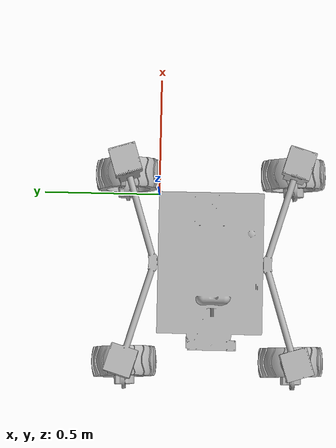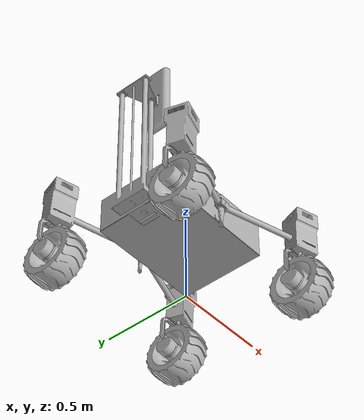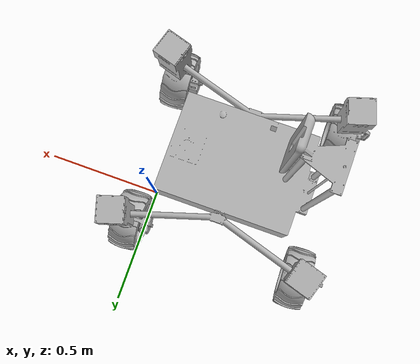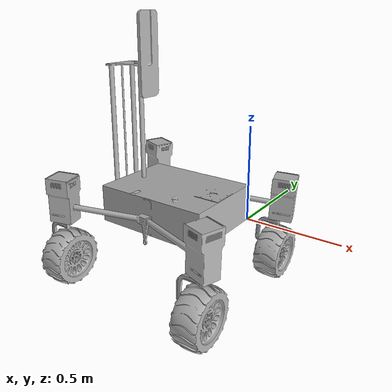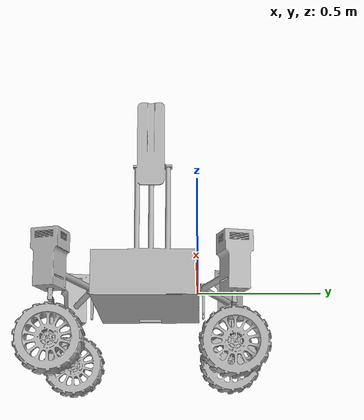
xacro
<?xml version="1.0" ?>
<robot name="onyx" xmlns:xacro="http://www.ros.org/wiki/xacro">

<xacro:include filename="$(find new_description)/urdf/materials.xacro" />

<link name="base_link">
  <inertial>
    <origin xyz="-0.3584749692611154 -0.22247254185875498 0.1674507190539034" rpy="0 0 0"/>
    <mass value="45.44445566983739"/>
    <inertia ixx="3.256638" iyy="4.634323" izz="3.278048" ixy="0.000512" iyz="0.000365" ixz="0.549494"/>
  </inertial>
  <visual>
    <origin xyz="0 0 0" rpy="0 0 0"/>
    <geometry>
      <mesh filename="file://$(find new_description)/meshes/base_link.stl" scale="0.001 0.001 0.001"/>
    </geometry>
    <material name="silver"/>
  </visual>
  <collision>
    <origin xyz="0 0 0" rpy="0 0 0"/>
    <geometry>
      <mesh filename="file://$(find new_description)/meshes/base_link.stl" scale="0.001 0.001 0.001"/>
    </geometry>
  </collision>
</link>

<link name="1._pivot_steering_v2_1">
  <inertial>
    <origin xyz="0.0013327059020719068 -0.14344220376800904 0.041707356384150185" rpy="0 0 0"/>
    <mass value="9.811514021273375"/>
    <inertia ixx="0.064211" iyy="1.826132" izz="1.795757" ixy="2.9e-05" iyz="0.001127" ixz="0.044969"/>
  </inertial>
  <visual>
    <origin xyz="0.3 0.448 -0.09" rpy="0 0 0"/>
    <geometry>
      <mesh filename="file://$(find new_description)/meshes/1._pivot_steering_v2_1.stl" scale="0.001 0.001 0.001"/>
    </geometry>
    <material name="silver"/>
  </visual>
  <collision>
    <origin xyz="0.3 0.448 -0.09" rpy="0 0 0"/>
    <geometry>
      <mesh filename="file://$(find new_description)/meshes/1._pivot_steering_v2_1.stl" scale="0.001 0.001 0.001"/>
    </geometry>
  </collision>
</link>

<link name="1._pivot_steering_v2_2">
  <inertial>
    <origin xyz="0.0023074010701228387 0.14344220376800906 0.041664800274108515" rpy="0 0 0"/>
    <mass value="9.811514021273375"/>
    <inertia ixx="0.069555" iyy="1.826132" izz="1.790413" ixy="-6.9e-05" iyz="-0.001125" ixz="0.106054"/>
  </inertial>
  <visual>
    <origin xyz="0.3 -0.003 -0.091" rpy="0 0 0"/>
    <geometry>
      <mesh filename="file://$(find new_description)/meshes/1._pivot_steering_v2_2.stl" scale="0.001 0.001 0.001"/>
    </geometry>
    <material name="silver"/>
  </visual>
  <collision>
    <origin xyz="0.3 -0.003 -0.091" rpy="0 0 0"/>
    <geometry>
      <mesh filename="file://$(find new_description)/meshes/1._pivot_steering_v2_2.stl" scale="0.001 0.001 0.001"/>
    </geometry>
  </collision>
</link>

<link name="1._driving_v2_1">
  <inertial>
    <origin xyz="-0.05336323228963791 -0.001790241868721898 -0.23611207721402075" rpy="0 0 0"/>
    <mass value="2.150656122682915"/>
    <inertia ixx="0.013956" iyy="0.016641" izz="0.003749" ixy="-0.0001" iyz="-6.9e-05" ixz="-0.002335"/>
  </inertial>
  <visual>
    <origin xyz="-0.116011 0.591408 -0.062747" rpy="0 0 0"/>
    <geometry>
      <mesh filename="file://$(find new_description)/meshes/1._driving_v2_1.stl" scale="0.001 0.001 0.001"/>
    </geometry>
    <material name="silver"/>
  </visual>
  <collision>
    <origin xyz="-0.116011 0.591408 -0.062747" rpy="0 0 0"/>
    <geometry>
      <mesh filename="file://$(find new_description)/meshes/1._driving_v2_1.stl" scale="0.001 0.001 0.001"/>
    </geometry>
  </collision>
</link>

<link name="1._driving_v2_3">
  <inertial>
    <origin xyz="-0.05336302206809562 -0.001790241868722342 -0.23611208152895571" rpy="0 0 0"/>
    <mass value="2.150656122682915"/>
    <inertia ixx="0.013956" iyy="0.016641" izz="0.003749" ixy="-0.0001" iyz="-6.9e-05" ixz="-0.002335"/>
  </inertial>
  <visual>
    <origin xyz="0.716864 0.591408 -0.084264" rpy="0 0 0"/>
    <geometry>
      <mesh filename="file://$(find new_description)/meshes/1._driving_v2_3.stl" scale="0.001 0.001 0.001"/>
    </geometry>
    <material name="silver"/>
  </visual>
  <collision>
    <origin xyz="0.716864 0.591408 -0.084264" rpy="0 0 0"/>
    <geometry>
      <mesh filename="file://$(find new_description)/meshes/1._driving_v2_3.stl" scale="0.001 0.001 0.001"/>
    </geometry>
  </collision>
</link>

<link name="1._driving_v2_2">
  <inertial>
    <origin xyz="-0.06173523819166341 -0.0017906129843301144 -0.23406282227931077" rpy="0 0 0"/>
    <mass value="2.150656122682915"/>
    <inertia ixx="0.013777" iyy="0.016641" izz="0.003928" ixy="-0.000102" iyz="-6.5e-05" ixz="-0.002692"/>
  </inertial>
  <visual>
    <origin xyz="-0.114777 -0.146408 -0.048954" rpy="0 0 0"/>
    <geometry>
      <mesh filename="file://$(find new_description)/meshes/1._driving_v2_2.stl" scale="0.001 0.001 0.001"/>
    </geometry>
    <material name="silver"/>
  </visual>
  <collision>
    <origin xyz="-0.114777 -0.146408 -0.048954" rpy="0 0 0"/>
    <geometry>
      <mesh filename="file://$(find new_description)/meshes/1._driving_v2_2.stl" scale="0.001 0.001 0.001"/>
    </geometry>
  </collision>
</link>

<link name="1._driving_v2_4">
  <inertial>
    <origin xyz="-0.061736017683869826 -0.0017906129843305862 -0.2340621183806948" rpy="0 0 0"/>
    <mass value="2.150656122682915"/>
    <inertia ixx="0.013777" iyy="0.016641" izz="0.003928" ixy="-0.000102" iyz="-6.5e-05" ixz="-0.002692"/>
  </inertial>
  <visual>
    <origin xyz="0.716803 -0.146408 -0.100108" rpy="0 0 0"/>
    <geometry>
      <mesh filename="file://$(find new_description)/meshes/1._driving_v2_4.stl" scale="0.001 0.001 0.001"/>
    </geometry>
    <material name="silver"/>
  </visual>
  <collision>
    <origin xyz="0.716803 -0.146408 -0.100108" rpy="0 0 0"/>
    <geometry>
      <mesh filename="file://$(find new_description)/meshes/1._driving_v2_4.stl" scale="0.001 0.001 0.001"/>
    </geometry>
  </collision>
</link>

<link name="1._wheel_simplified_v2_1">
  <inertial>
    <origin xyz="-0.03947205553790728 -0.0013188678711944513 0.0024275550921873112" rpy="0 0 0"/>
    <mass value="23.722548877018745"/>
    <inertia ixx="0.348962" iyy="0.207419" izz="0.207797" ixy="0.004735" iyz="-0.000291" ixz="-0.008717"/>
  </inertial>
  <visual>
    <origin xyz="-0.139795 -0.147791 0.219889" rpy="0 0 0"/>
    <geometry>
      <mesh filename="file://$(find new_description)/meshes/1._wheel_simplified_v2_1.stl" scale="0.001 0.001 0.001"/>
    </geometry>
    <material name="silver"/>
  </visual>
  <collision>
    <origin xyz="-0.139795 -0.147791 0.219889" rpy="0 0 0"/>
    <geometry>
      <mesh filename="file://$(find new_description)/meshes/1._wheel_simplified_v2_1.stl" scale="0.001 0.001 0.001"/>
    </geometry>
  </collision>
</link>

<link name="1._wheel_simplified_v2_3">
  <inertial>
    <origin xyz="-0.03947183503011431 -0.0013188678711952284 0.0024282589908032892" rpy="0 0 0"/>
    <mass value="23.722548877018745"/>
    <inertia ixx="0.348962" iyy="0.207419" izz="0.207797" ixy="0.004735" iyz="-0.000291" ixz="-0.008717"/>
  </inertial>
  <visual>
    <origin xyz="0.691786 -0.147791 0.168735" rpy="0 0 0"/>
    <geometry>
      <mesh filename="file://$(find new_description)/meshes/1._wheel_simplified_v2_3.stl" scale="0.001 0.001 0.001"/>
    </geometry>
    <material name="silver"/>
  </visual>
  <collision>
    <origin xyz="0.691786 -0.147791 0.168735" rpy="0 0 0"/>
    <geometry>
      <mesh filename="file://$(find new_description)/meshes/1._wheel_simplified_v2_3.stl" scale="0.001 0.001 0.001"/>
    </geometry>
  </collision>
</link>

<link name="1._wheel_simplified_v2_4">
  <inertial>
    <origin xyz="-0.039533229871911726 -0.0013184967555868177 0.0010210764613666212" rpy="0 0 0"/>
    <mass value="23.722548877018745"/>
    <inertia ixx="0.349404" iyy="0.207419" izz="0.207356" ixy="0.004742" iyz="-0.000122" ixz="-0.003672"/>
  </inertial>
  <visual>
    <origin xyz="-0.150584 0.590025 0.205035" rpy="0 0 0"/>
    <geometry>
      <mesh filename="file://$(find new_description)/meshes/1._wheel_simplified_v2_4.stl" scale="0.001 0.001 0.001"/>
    </geometry>
    <material name="silver"/>
  </visual>
  <collision>
    <origin xyz="-0.150584 0.590025 0.205035" rpy="0 0 0"/>
    <geometry>
      <mesh filename="file://$(find new_description)/meshes/1._wheel_simplified_v2_4.stl" scale="0.001 0.001 0.001"/>
    </geometry>
  </collision>
</link>

<link name="1._wheel_simplified_v2_2">
  <inertial>
    <origin xyz="-0.03953301965036915 -0.0013184967555871507 0.0010210721464319061" rpy="0 0 0"/>
    <mass value="23.722548877018745"/>
    <inertia ixx="0.349404" iyy="0.207419" izz="0.207356" ixy="0.004742" iyz="-0.000122" ixz="-0.003672"/>
  </inertial>
  <visual>
    <origin xyz="0.682291 0.590025 0.183518" rpy="0 0 0"/>
    <geometry>
      <mesh filename="file://$(find new_description)/meshes/1._wheel_simplified_v2_2.stl" scale="0.001 0.001 0.001"/>
    </geometry>
    <material name="silver"/>
  </visual>
  <collision>
    <origin xyz="0.682291 0.590025 0.183518" rpy="0 0 0"/>
    <geometry>
      <mesh filename="file://$(find new_description)/meshes/1._wheel_simplified_v2_2.stl" scale="0.001 0.001 0.001"/>
    </geometry>
  </collision>
</link>

<joint name="body_joint1" type="fixed">
  <origin xyz="-0.3 -0.448 0.09" rpy="0 0 0"/>
  <parent link="base_link"/>
  <child link="1._pivot_steering_v2_1"/>
  <axis xyz="0.0 1.0 -0.0"/>
</joint>

<joint name="body_joint2" type="fixed">
  <origin xyz="-0.3 0.003 0.091" rpy="0 0 0"/>
  <parent link="base_link"/>
  <child link="1._pivot_steering_v2_2"/>
  <axis xyz="0.0 -1.0 0.0"/>
</joint>

<joint name="body_joint3" type="fixed">
  <origin xyz="0.416011 -0.143408 -0.027253" rpy="0 0 0"/>
  <parent link="1._pivot_steering_v2_1"/>
  <child link="1._driving_v2_1"/>
  <axis xyz="0.025826 0.0 0.999666"/>
</joint>

<joint name="body_joint4" type="fixed">
  <origin xyz="-0.416864 -0.143408 -0.005736" rpy="0 0 0"/>
  <parent link="1._pivot_steering_v2_1"/>
  <child link="1._driving_v2_3"/>
  <axis xyz="-0.025826 -0.0 -0.999666"/>
</joint>

<joint name="body_joint5" type="fixed">
  <origin xyz="0.414777 0.143408 -0.042046" rpy="0 0 0"/>
  <parent link="1._pivot_steering_v2_2"/>
  <child link="1._driving_v2_2"/>
  <axis xyz="-0.061399 0.0 -0.998113"/>
</joint>

<joint name="body_joint6" type="fixed">
  <origin xyz="-0.416803 0.143408 0.009108" rpy="0 0 0"/>
  <parent link="1._pivot_steering_v2_2"/>
  <child link="1._driving_v2_4"/>
  <axis xyz="0.061399 -0.0 0.998113"/>
</joint>

<joint name="body_joint7" type="fixed">
  <origin xyz="0.025018 0.001383 -0.268843" rpy="0 0 0"/>
  <parent link="1._driving_v2_2"/>
  <child link="1._wheel_simplified_v2_1"/>
  <axis xyz="0.997559 0.03333 -0.061365"/>
</joint>

<joint name="body_joint8" type="fixed">
  <origin xyz="0.025017 0.001383 -0.268843" rpy="0 0 0"/>
  <parent link="1._driving_v2_4"/>
  <child link="1._wheel_simplified_v2_3"/>
  <axis xyz="0.997559 0.03333 -0.061365"/>
</joint>

<joint name="body_joint9" type="fixed">
  <origin xyz="0.034573 0.001383 -0.267782" rpy="0 0 0"/>
  <parent link="1._driving_v2_1"/>
  <child link="1._wheel_simplified_v2_4"/>
  <axis xyz="0.999111 0.03333 -0.025812"/>
</joint>

<joint name="body_joint10" type="fixed">
  <origin xyz="0.034573 0.001383 -0.267782" rpy="0 0 0"/>
  <parent link="1._driving_v2_3"/>
  <child link="1._wheel_simplified_v2_2"/>
  <axis xyz="0.999111 0.03333 -0.025812"/>
</joint>

</robot>

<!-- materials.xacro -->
<robot name="onyx" xmlns:xacro="http://www.ros.org/wiki/xacro" >

<material name="silver">
  <color rgba="0.700 0.700 0.700 1.000"/>
</material>

</robot>
